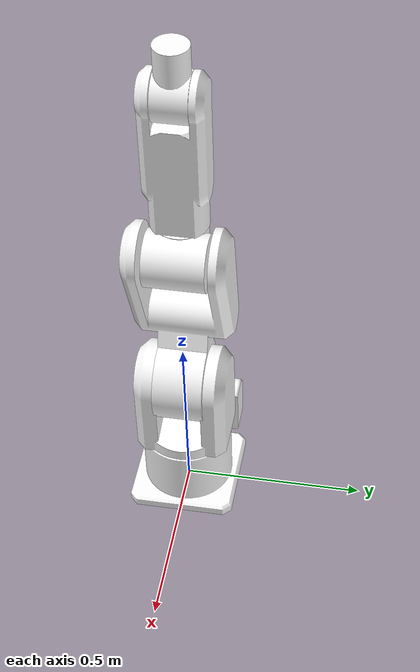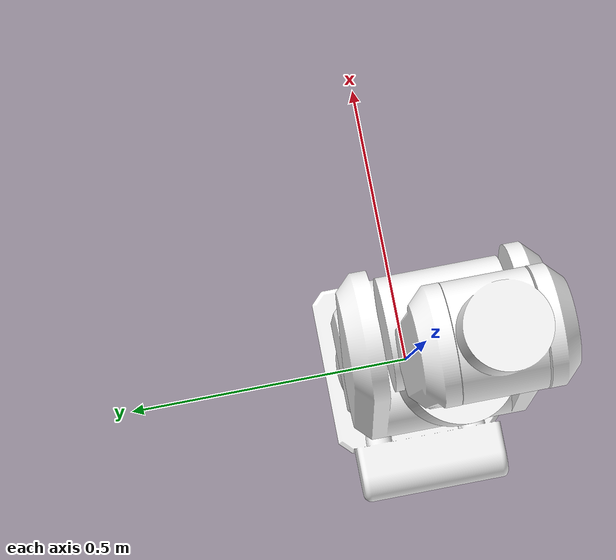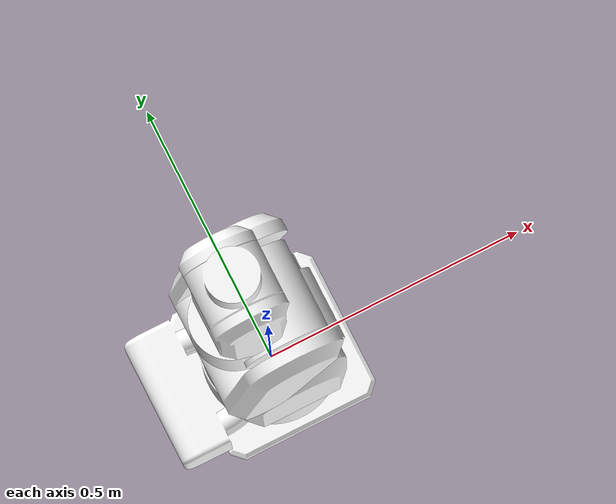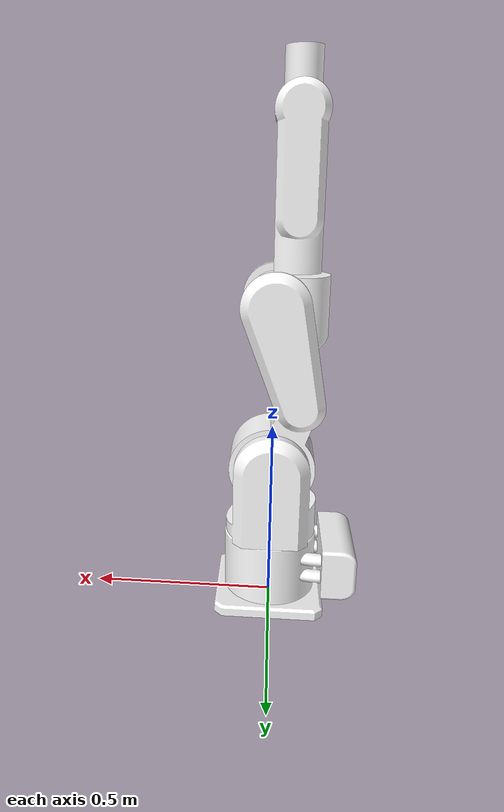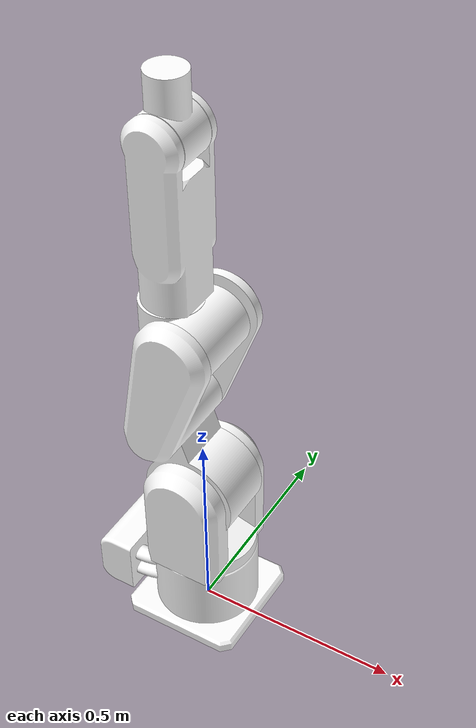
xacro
<?xml version="1.0"?>
<!-- Copyright (C) 2018, Tokyo Opensource Robotics Kyokai Association -->
<robot name="rv7fl" xmlns:xacro="http://www.ros.org/wiki/xacro">
  <material name="white">
    <color rgba="1.0 1.0 1.0 1.0"/>
  </material>

  <xacro:include filename="$(find melfa_description)/urdf/rv7fl.xacro"/>

  <link name="base_link"/>

  <xacro:rv7fl parent="base_link">
    <origin xyz="0 0 0" rpy="0 0 0"/>
  </xacro:rv7fl>

</robot>

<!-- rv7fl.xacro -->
<!-- Copyright (C) 2018, Tokyo Opensource Robotics Kyokai Association -->
<robot xmlns:xacro="http://www.ros.org/wiki/xacro">
  <xacro:property name="folder" value="package://melfa_description/mesh/rv7fl"/>
  <xacro:macro name="rv7fl" params="parent *origin">
    <joint name="rv7fl_mounting_joint" type="fixed">
      <xacro:insert_block name="origin"/>
      <parent link="${parent}"/>
      <child link="link0"/>
    </joint>
    <link name="link0">
      <visual>
	<origin rpy="0 0 0" xyz="0 0 0"/>
	<geometry>
	  <mesh filename="package://melfa_description/mesh/rv7fl/L0.stl" scale="1.4 1.4 1.1"/>
	</geometry>
	<material name="white"/>
      </visual>
      <collision>
	<origin rpy="0 0 0" xyz="0 0 0"/>
	<geometry>
	  <mesh filename="package://melfa_description/mesh/rv7fl/L0.stl" scale="1.4 1.4 1.1"/>
	</geometry>
      </collision>
    </link>

    <joint name="joint1" type="revolute">
      <parent link="link0"/>
      <child link="link1"/>
      <origin xyz="0 0 0.4" rpy="0 0 0"/>
      <axis xyz="0 0 1"/>
      <dynamics damping="0.7"/>
      <limit upper="${240*pi/180}" lower="${-240*pi/180}" effort="10" velocity="${288*pi/180}" />
    </joint>

    <link name="link1">
      <visual>
	<origin rpy="0 0 0" xyz="0 0 0"/>
	<geometry>
	  <mesh filename="package://melfa_description/mesh/rv7fl/L1.stl" scale="1.3 1.3 1.3"/>
	</geometry>
	<material name="white"/>
      </visual>
      <collision>
	<origin rpy="0 0 0" xyz="0 0 0"/>
	<geometry>
	  <mesh filename="package://melfa_description/mesh/rv7fl/L1.stl" scale="1.3 1.3 1.3"/>
	</geometry>
      </collision>
    </link>

    <joint name="joint2" type="revolute">
      <parent link="link1"/>
      <child link="link2"/>
      <origin xyz="0 0 0" rpy="0 0 0"/>
      <axis xyz="0 1 0"/>
      <dynamics damping="0.7"/>
      <limit upper="${130*pi/180}" lower="${-110*pi/180}" effort="10" velocity="${321*pi/180}" />
    </joint>

    <link name="link2">
      <visual>
	<origin rpy="0 0 0" xyz="0 0 0"/>
	<geometry>
	  <mesh filename="package://melfa_description/mesh/rv7fl/L2.stl" scale="1.45 1.45 1.45"/>
	</geometry>
	<material name="white"/>
      </visual>
      <collision>
	<origin rpy="0 0 0" xyz="0 0 0"/>
	<geometry>
	  <mesh filename="package://melfa_description/mesh/rv7fl/L2.stl" scale="1.45 1.45 1.45"/>
	</geometry>
      </collision>
    </link>

    <joint name="joint3" type="revolute">
      <parent link="link2"/>
      <child link="link3"/>
      <origin xyz="0 0 0.435" rpy="0 0 0"/>
      <axis xyz="0 1 0"/>
      <dynamics damping="0.7"/>
      <limit upper="${162*pi/180}" lower="0.00" effort="10" velocity="${360*pi/180}" />
    </joint>

    <link name="link3">
      <visual>
	<origin rpy="0 0 0" xyz="0 0 0"/>
	<geometry>
	  <mesh filename="package://melfa_description/mesh/rv7fl/L3.stl" scale="1.3 1.3 1.3"/>
	</geometry>
	<material name="white"/>
      </visual>
      <collision>
	<origin rpy="0 0 0" xyz="0 0 0"/>
	<geometry>
	  <mesh filename="package://melfa_description/mesh/rv7fl/L3.stl" scale="1.3 1.3 1.3"/>
	</geometry>
      </collision>
    </link>

    <joint name="joint4" type="revolute">
      <parent link="link3"/>
      <child link="link4"/>
      <origin xyz="-0.05 0 0.47" rpy="0 0 0"/>
      <axis xyz="0 0 1"/>
      <dynamics damping="0.7"/>
      <limit upper="${200*pi/180}" lower="${-200*pi/180}" effort="10" velocity="${337*pi/180}" />
    </joint>

    <link name="link4">
      <visual>
	<origin rpy="0 0 0" xyz="0 0 0"/>
	<geometry>
	  <mesh filename="package://melfa_description/mesh/rv7fl/L4.stl" scale="1.4 1.4 1.4"/>
	</geometry>
	<material name="white"/>
      </visual>
      <collision>
	<origin rpy="0 0 0" xyz="0 0 0"/>
	<geometry>
	  <mesh filename="package://melfa_description/mesh/rv7fl/L4.stl" scale="1.4 1.4 1.4"/>
	</geometry>
      </collision>
    </link>

    <joint name="joint5" type="revolute">
      <parent link="link4"/>
      <child link="link5"/>
      <origin xyz="0 0 0" rpy="0 0 0"/>
      <axis xyz="0 1 0"/>
      <dynamics damping="0.7"/>
      <limit upper="${120*pi/180}" lower="${-120*pi/180}" effort="10" velocity="${450*pi/180}" />
    </joint>

    <link name="link5">
      <visual>
	<origin rpy="0 0 0" xyz="0 0 0"/>
	<geometry>
	  <mesh filename="package://melfa_description/mesh/rv7fl/L5.stl" scale="1.4 1.4 1.4"/>
	</geometry>
	<material name="white"/>
      </visual>
      <collision>
	<origin rpy="0 0 0" xyz="0 0 0"/>
	<geometry>
	  <mesh filename="package://melfa_description/mesh/rv7fl/L5.stl" scale="1.4 1.4 1.4"/>
	</geometry>
      </collision>
    </link>

    <joint name="joint6" type="revolute">
      <parent link="link5"/>
      <child link="link6"/>
      <origin xyz="0 0 0.085" rpy="0 0 0"/>
      <axis xyz="0 0 1"/>
      <dynamics damping="0.7"/>
      <limit upper="${360*pi/180}" lower="${-360*pi/180}" effort="10" velocity="${720*pi/180}" />
    </joint>

    <link name="link6">
      <visual>
	<origin rpy="0 0 0" xyz="0 0 0"/>
	<geometry>
	  <mesh filename="package://melfa_description/mesh/rv7fl/L6.stl"/>
	</geometry>
	<material name="white"/>
      </visual>
      <collision>
	<origin rpy="0 0 0" xyz="0 0 0"/>
	<geometry>
	  <mesh filename="package://melfa_description/mesh/rv7fl/L6.stl"/>
	</geometry>
      </collision>
    </link>
  </xacro:macro>
</robot>
